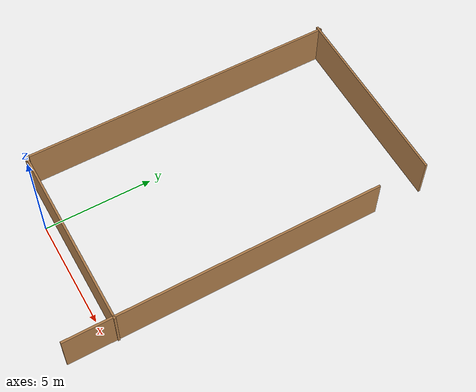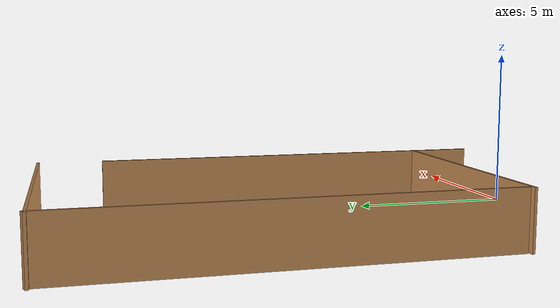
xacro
<robot name="pool_table"
       xmlns:xacro="http://ros.org/wiki/xacro"
       xmlns:sensor="http://playerstage.sourceforge.net/gazebo/xmlschema/#sensor"
       xmlns:controller="http://playerstage.sourceforge.net/gazebo/xmlschema/#controller"
       xmlns:interface="http://playerstage.sourceforge.net/gazebo/xmlschema/#interface">

  <xacro:property name="table_width" value="1.2192"/> <!-- 4ft -->
  <xacro:property name="table_length" value="2.4384"/> <!-- 8ft -->
  <xacro:property name="table_height" value=".05"/>
  <xacro:property name="side_pocket_dl" value="0.18"/>
  <xacro:property name="corner_pocket_dw" value="0.08"/>
  <xacro:property name="corner_pocket_dl" value="0.08"/>
  <xacro:property name="cushion_height" value="0.05"/>
  <xacro:property name="cushion_size" value="0.05"/>
  <xacro:property name="leg_height" value="0.7"/>

  <!-- x along the long side, y short side, z up and origin at surface of table top -->
  <link name="wall1">
    <inertial>
      <mass value="200.0" />
      <origin xyz="${table_length/2} ${table_width/2} ${-table_height/2}" rpy="0 0 0" />
      <inertia  ixx="100.0" ixy="0.0"  ixz="0.0"  iyy="100.0"  iyz="0.0"  izz="100.0" />
    </inertial>
    <visual>
      <origin xyz="${table_length/2} ${table_width/2} ${-table_height/2}" rpy="0 0 0" />
      <geometry>
        <box size="9 0.1 ${leg_height*3}"/>
      </geometry>
    </visual>
    <collision>
      <origin xyz="${table_length/2} ${table_width/2} ${-table_height/2}" rpy="0 0 0" />
      <geometry>
        <box size="9 0.1 ${leg_height*3}"/>
      </geometry>
    </collision>
  </link>
  <gazebo reference="wall1">
    <material>Gazebo/Wood</material>
    <mu1>50.0</mu1>
    <mu2>50.0</mu2>
    <kp>1000000.0</kp>
    <kd>1.0</kd>
  </gazebo>

<!-- with origin at final approach -->
  <joint name="wall1_joint" type="fixed" >
    <parent link="wall1" />
    <child link="wall2" />
    <!--origin xyz="${-table_length/2} ${-table_width/2} ${-leg_height/2}" rpy="0 0 0" /-->
    <origin xyz="-2.5 7 0" rpy="0 0 1.57" />
  </joint>

<!-- x along the long side, y short side, z up and origin at surface of table top -->
  <link name="wall2">
    <inertial>
      <mass value="200.0" />
      <origin xyz="${table_length/2} ${table_width/2} ${-table_height/2}" rpy="0 0 0" />
      <inertia  ixx="100.0" ixy="0.0"  ixz="0.0"  iyy="100.0"  iyz="0.0"  izz="100.0" />
    </inertial>
    <visual>
      <origin xyz="${table_length/2} ${table_width/2} ${-table_height/2}" rpy="0 0 0" />
      <geometry>
        <box size="15 0.1 ${leg_height*3}"/>
      </geometry>
    </visual>
    <collision>
      <origin xyz="${table_length/2} ${table_width/2} ${-table_height/2}" rpy="0 0 0" />
      <geometry>
        <box size="15 0.1 ${leg_height*3}"/>
      </geometry>
    </collision>
  </link>
  <gazebo reference="wall2">
    <material>Gazebo/Wood</material>
    <mu1>50.0</mu1>
    <mu2>50.0</mu2>
    <kp>1000000.0</kp>
    <kd>1.0</kd>
  </gazebo>

<!-- with origin at final approach -->
  <joint name="wall3_joint" type="fixed" >
    <parent link="wall1" />
    <child link="wall3" />
    <!--origin xyz="${-table_length/2} ${-table_width/2} ${-leg_height/2}" rpy="0 0 0" /-->
    <origin xyz="5 7 0" rpy="0 0 -1.57" />
  </joint>

<!-- x along the long side, y short side, z up and origin at surface of table top -->
  <link name="wall3">
    <inertial>
      <mass value="200.0" />
      <origin xyz="${table_length/2} ${table_width/2} ${-table_height/2}" rpy="0 0 0" />
      <inertia  ixx="100.0" ixy="0.0"  ixz="0.0"  iyy="100.0"  iyz="0.0"  izz="100.0" />
    </inertial>
    <visual>
      <origin xyz="${table_length/2} ${table_width/2} ${-table_height/2}" rpy="0 0 0" />
      <geometry>
        <box size="15 0.1 ${leg_height*3}"/>
      </geometry>
    </visual>
    <collision>
      <origin xyz="${table_length/2} ${table_width/2} ${-table_height/2}" rpy="0 0 0" />
      <geometry>
        <box size="10 0.1 ${leg_height*3}"/>
      </geometry>
    </collision>
  </link>
  <gazebo reference="wall3">
    <material>Gazebo/Wood</material>
    <mu1>50.0</mu1>
    <mu2>50.0</mu2>
    <kp>1000000.0</kp>
    <kd>1.0</kd>
  </gazebo>

<!-- with origin at final approach -->
  <joint name="wall4_joint" type="fixed" >
    <parent link="wall1" />
    <child link="wall4" />
    <!--origin xyz="${-table_length/2} ${-table_width/2} ${-leg_height/2}" rpy="0 0 0" /-->
    <origin xyz="0 15 0" rpy="0 0 0" />
  </joint>

<!-- x along the long side, y short side, z up and origin at surface of table top -->
  <link name="wall4">
    <inertial>
      <mass value="200.0" />
      <origin xyz="${table_length/2} ${table_width/2} ${-table_height/2}" rpy="0 0 0" />
      <inertia  ixx="100.0" ixy="0.0"  ixz="0.0"  iyy="100.0"  iyz="0.0"  izz="100.0" />
    </inertial>
    <visual>
      <origin xyz="${table_length/2} ${table_width/2} ${-table_height/2}" rpy="0 0 0" />
      <geometry>
        <box size="9 0.1 ${leg_height*3}"/>
      </geometry>
    </visual>
    <collision>
      <origin xyz="${table_length/2} ${table_width/2} ${-table_height/2}" rpy="0 0 0" />
      <geometry>
        <box size="9 0.1 ${leg_height*3}"/>
      </geometry>
    </collision>
  </link>
  <gazebo reference="wall4">
    <material>Gazebo/Wood</material>
    <mu1>50.0</mu1>
    <mu2>50.0</mu2>
    <kp>1000000.0</kp>
    <kd>1.0</kd>
  </gazebo>
  <gazebo>
    <!-- gazebo_ros_p3d for position groundtruth -->
    <controller:gazebo_ros_p3d name="p3d_pool_table_controller" plugin="libgazebo_ros_p3d.so">
        <alwaysOn>true</alwaysOn>
        <updateRate>100.0</updateRate>
        <bodyName>pool_table</bodyName>
        <topicName>pool_table_pose_ground_truth</topicName>
        <frameName>base_link</frameName>
        <interface:position name="p3d_pool_table_position"/>
    </controller:gazebo_ros_p3d>
    <static>true</static>
  </gazebo>

</robot>
